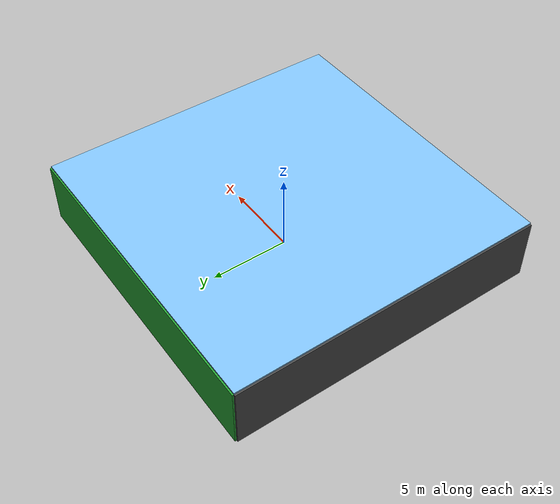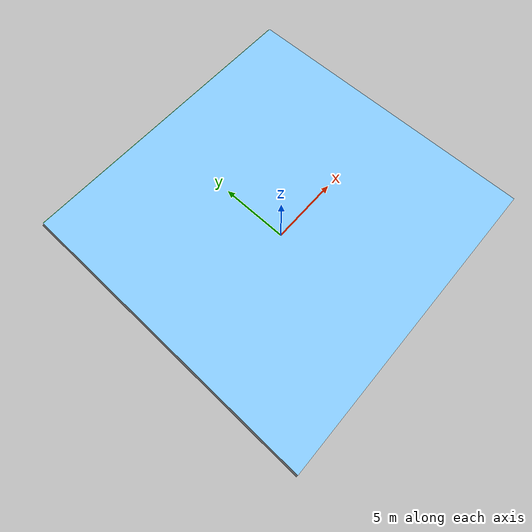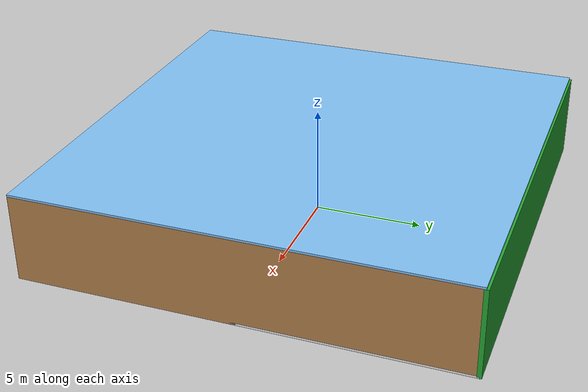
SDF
<sdf version="1.4">
 <world name="default">
  <physics type="ode">
   <max_step_size>0.001</max_step_size>
   <real_time_factor>1</real_time_factor>
   <real_time_update_rate>1000</real_time_update_rate>
   <gravity>0 0 -9.8</gravity>
  </physics>
  <scene><ambient>0.4 0.4 0.4 1</ambient><background>0.7 0.7 0.7 1</background><shadows>1</shadows></scene>
  <model name="Surrounding">
   <static>1</static>
   <link name="Ceiling">
    <collision name="Ceiling_Collision"><geometry><box><size>20 20 0.1</size></box></geometry></collision>
    <visual name="Ceiling_Visual">
     <geometry><box><size>20 20 0.1</size></box></geometry>
     <material>
      <script><uri>file://media/materials/scripts/gazebo.material</uri><name>Gazebo/SkyBlue</name></script>
     </material>
    </visual>
    <pose>0 0 4.05 0 0 0</pose>
   </link>
   <link name="Wall_South">
    <collision name="Wall_South_Collision">
     <geometry><box><size>20 0 4</size></box></geometry>
     <pose>0 0 2 0 -0 0</pose>
    </collision>
    <visual name="Wall_South_Visual">
     <pose>0 0 2 0 -0 0</pose>
     <geometry><box><size>20 0 4</size></box></geometry>
     <material>
      <script><uri>file://media/materials/scripts/gazebo.material</uri><name>Gazebo/Road</name></script>
     </material>
    </visual>
    <velocity_decay><linear>0</linear><angular>0</angular></velocity_decay>
    <pose>0 -10 0 0 -0 0</pose>
   </link>
   <link name="Wall_East">
    <collision name="Wall_21_Collision">
     <geometry><box><size>20 0 4</size></box></geometry>
     <pose>0 0 2 0 -0 0</pose>
    </collision>
    <visual name="Wall_21_Visual">
     <pose>0 0 2 0 -0 0</pose>
     <geometry><box><size>20 0 4</size></box></geometry>
     <material>
      <script><uri>file://media/materials/scripts/gazebo.material</uri><name>Gazebo/WoodFloor</name></script>
     </material>
    </visual>
    <velocity_decay><linear>0</linear><angular>0</angular></velocity_decay>
    <pose>10 0 0 0 -0 1.5708</pose>
   </link>
   <link name="Wall_North">
    <collision name="Wall_22_Collision">
     <geometry><box><size>20 0.2 4</size></box></geometry>
     <pose>0 0 2 0 -0 0</pose>
    </collision>
    <visual name="Wall_22_Visual">
     <pose>0 0 2 0 -0 0</pose>
     <geometry><box><size>20 0.2 4</size></box></geometry>
     <material>
      <script><uri>file://media/materials/scripts/gazebo.material</uri><name>Gazebo/GreenGlow</name></script>
     </material>
    </visual>
    <velocity_decay><linear>0</linear><angular>0</angular></velocity_decay>
    <pose>0 10 0 0 -0 0</pose>
   </link>
   <link name="Wall_West">
    <collision name="Wall_23_Collision">
     <geometry><box><size>20 0.2 4</size></box></geometry>
     <pose>0 0 2 0 -0 0</pose>
    </collision>
    <visual name="Wall_23_Visual">
     <pose>0 0 2 0 -0 0</pose>
     <geometry><box><size>20 0.2 4</size></box></geometry>
     <material>
      <script><uri>file://media/materials/scripts/gazebo.material</uri><name>Gazebo/Road</name></script>
     </material>
    </visual>
    <velocity_decay><linear>0</linear><angular>0</angular></velocity_decay>
    <pose>-10 0 0 0 0 -1.5708</pose>
   </link>
   <link name="Ground_link">
    <collision name="collision">
     <pose>0 0 .05 0 -0 0</pose>
     <geometry><box><size>20 20 0.1</size></box></geometry>
    </collision>
    <visual name="visual">
     <pose>0 0 .05 0 -0 0</pose>
     <geometry><box><size>20 20 0.1</size></box></geometry>
     <material>
      <script><uri>file://media/materials/scripts/gazebo.material</uri><name>Gazebo/White</name></script>
     </material>
    </visual>
   </link>
   <static>1</static>
  </model>
  <spherical_coordinates>
   <surface_model>EARTH_WGS84</surface_model>
   <latitude_deg>0</latitude_deg>
   <longitude_deg>0</longitude_deg>
   <elevation>0</elevation>
   <heading_deg>0</heading_deg>
  </spherical_coordinates>
  <light name="lightball_0" type="diffuse">
   <diffuse>0.8 0.8 0.8 1</diffuse>
   <specular>0.2 0.2 0.2 1</specular>
   <attenuation>
    <range>100</range>
    <constant>0.7</constant>
    <linear>0.01</linear>
    <quadratic>0.001</quadratic>
   </attenuation>
   <direction>-0.5 0.1 -0.9</direction>
   <pose>1.60135950306 8.62986782255 2.2149551976 0 0 0</pose>
  </light>
  <light name="lightball_1" type="diffuse">
   <diffuse>0.8 0.8 0.8 1</diffuse>
   <specular>0.2 0.2 0.2 1</specular>
   <attenuation>
    <range>100</range>
    <constant>0.7</constant>
    <linear>0.01</linear>
    <quadratic>0.001</quadratic>
   </attenuation>
   <direction>-0.5 0.1 -0.9</direction>
   <pose>-8.12073808157 -8.17613004671 1.59860203248 0 0 0</pose>
  </light>
  <light name="lightball_2" type="diffuse">
   <diffuse>0.8 0.8 0.8 1</diffuse>
   <specular>0.2 0.2 0.2 1</specular>
   <attenuation>
    <range>100</range>
    <constant>0.7</constant>
    <linear>0.01</linear>
    <quadratic>0.001</quadratic>
   </attenuation>
   <direction>-0.5 0.1 -0.9</direction>
   <pose>1.23277195574 -0.399136727293 2.59410009675 0 0 0</pose>
  </light>
  <light name="lightball_3" type="diffuse">
   <diffuse>0.8 0.8 0.8 1</diffuse>
   <specular>0.2 0.2 0.2 1</specular>
   <attenuation>
    <range>100</range>
    <constant>0.7</constant>
    <linear>0.01</linear>
    <quadratic>0.001</quadratic>
   </attenuation>
   <direction>-0.5 0.1 -0.9</direction>
   <pose>-9.72700510143 6.50020650781 3.31891107513 0 0 0</pose>
  </light>
  <light name="lightball_4" type="diffuse">
   <diffuse>0.8 0.8 0.8 1</diffuse>
   <specular>0.2 0.2 0.2 1</specular>
   <attenuation>
    <range>100</range>
    <constant>0.7</constant>
    <linear>0.01</linear>
    <quadratic>0.001</quadratic>
   </attenuation>
   <direction>-0.5 0.1 -0.9</direction>
   <pose>4.83365774437 -4.43040755595 1.60612511289 0 0 0</pose>
  </light>
  <light name="lightball_5" type="diffuse">
   <diffuse>0.8 0.8 0.8 1</diffuse>
   <specular>0.2 0.2 0.2 1</specular>
   <attenuation>
    <range>100</range>
    <constant>0.7</constant>
    <linear>0.01</linear>
    <quadratic>0.001</quadratic>
   </attenuation>
   <direction>-0.5 0.1 -0.9</direction>
   <pose>-6.31478643757 6.47475378426 3.03583213404 0 0 0</pose>
  </light>
  <light name="lightball_6" type="diffuse">
   <diffuse>0.8 0.8 0.8 1</diffuse>
   <specular>0.2 0.2 0.2 1</specular>
   <attenuation>
    <range>100</range>
    <constant>0.7</constant>
    <linear>0.01</linear>
    <quadratic>0.001</quadratic>
   </attenuation>
   <direction>-0.5 0.1 -0.9</direction>
   <pose>-7.50563753886 -9.46310239704 1.703124927 0 0 0</pose>
  </light>
  <include><uri>model://cabinet</uri><pose>7.40971806891 -6.70969234739 0 0 0 0.835758067228</pose></include>
  <include><uri>model://cabinet</uri><pose>7.20136774555 -1.01714127039 0 0 0 1.9623122307</pose></include>
 </world>
</sdf>

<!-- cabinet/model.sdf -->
<sdf version="1.5">
  <model name="cabinet">
    <static>true</static>
    <link name="cabinet_bottom_plate">
      <inertial>
        <pose>0 0 -1 0 0 0</pose>
        <inertia>
          <ixx>2.050000</ixx>
          <ixy>0</ixy>
          <ixz>0</ixz>
          <iyy>2.050000</iyy>
          <iyz>0</iyz>
          <izz>2.050000</izz>
        </inertia>
        <mass>25.000000</mass>
      </inertial>
      <collision name="cabinet_bottom_plate_geom">
        <pose>0 0 0.010000 0 0 0</pose>
        <geometry>
          <box>
            <size>0.450000 0.450000 0.020000</size>
          </box>
        </geometry>
      </collision>
      <visual name="cabinet_bottom_plate_geom_visual">
        <pose>0 0 0.010000 0 0 0</pose>
        <geometry>
          <box>
            <size>0.450000 0.450000 0.020000</size>
          </box>
        </geometry>
        <material>
          <script>
            <uri>model://media/materials/scripts/gazebo.material</uri>
            <name>Gazebo/Wood</name>
          </script>
        </material>
      </visual>
      <collision name="cabinet_bottom_plate_geom_cabinet_back_plate">
        <pose>0.235000 0 0.510000 0 0 0</pose>
        <geometry>
          <box>
            <size>0.020000 0.450000 1.020000</size>
          </box>
        </geometry>
      </collision>
      <visual name="cabinet_bottom_plate_geom_cabinet_back_plate_visual">
        <pose>0.235000 0 0.510000 0 0 0</pose>
        <geometry>
          <box>
            <size>0.020000 0.450000 1.020000</size>
          </box>
        </geometry>
        <material>
          <script>
            <uri>model://media/materials/scripts/gazebo.material</uri>
            <name>Gazebo/Wood</name>
          </script>
        </material>
      </visual>
      <collision name="cabinet_bottom_plate_geom_cabinet_left_plate">
        <pose>0 0.235000 0.510000 0 0 0</pose>
        <geometry>
          <box>
            <size>0.450000 0.020000 1.020000</size>
          </box>
        </geometry>
      </collision>
      <visual name="cabinet_bottom_plate_geom_cabinet_left_plate_visual">
        <pose>0 0.235000 0.510000 0 0 0</pose>
        <geometry>
          <box>
            <size>0.450000 0.020000 1.020000</size>
          </box>
        </geometry>
        <material>
          <script>
            <uri>model://media/materials/scripts/gazebo.material</uri>
            <name>Gazebo/Wood</name>
          </script>
        </material>
      </visual>
      <collision name="cabinet_bottom_plate_geom_cabinet_middle_plate">
        <pose>0 0 0.510000 0 0 0</pose>
        <geometry>
          <box>
            <size>0.450000 0.450000 0.020000</size>
          </box>
        </geometry>
      </collision>
      <visual name="cabinet_bottom_plate_geom_cabinet_middle_plate_visual">
        <pose>0 0 0.510000 0 0 0</pose>
        <geometry>
          <box>
            <size>0.450000 0.450000 0.020000</size>
          </box>
        </geometry>
        <material>
          <script>
            <uri>model://media/materials/scripts/gazebo.material</uri>
            <name>Gazebo/Wood</name>
          </script>
        </material>
      </visual>
      <collision name="cabinet_bottom_plate_geom_cabinet_right_plate">
        <pose>0 -0.235000 0.510000 0 0 0</pose>
        <geometry>
          <box>
            <size>0.450000 0.020000 1.020000</size>
          </box>
        </geometry>
      </collision>
      <visual name="cabinet_bottom_plate_geom_cabinet_right_plate_visual">
        <pose>0 -0.235000 0.510000 0 0 0</pose>
        <geometry>
          <box>
            <size>0.450000 0.020000 1.020000</size>
          </box>
        </geometry>
        <material>
          <script>
            <uri>model://media/materials/scripts/gazebo.material</uri>
            <name>Gazebo/Wood</name>
          </script>
        </material>
      </visual>
      <collision name="cabinet_bottom_plate_geom_cabinet_top_plate">
        <pose>0 0 1.010000 0 0 0</pose>
        <geometry>
          <box>
            <size>0.450000 0.450000 0.020000</size>
          </box>
        </geometry>
      </collision>
      <visual name="cabinet_bottom_plate_geom_cabinet_top_plate_visual">
        <pose>0 0 1.010000 0 0 0</pose>
        <geometry>
          <box>
            <size>0.450000 0.450000 0.020000</size>
          </box>
        </geometry>
        <material>
          <script>
            <uri>model://media/materials/scripts/gazebo.material</uri>
            <name>Gazebo/Wood</name>
          </script>
        </material>
      </visual>
    </link>
  </model>
</sdf>
